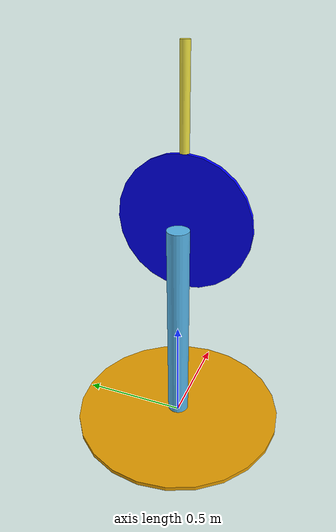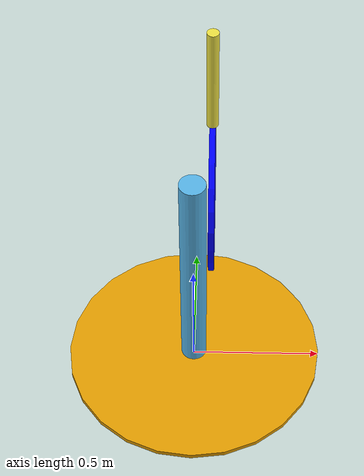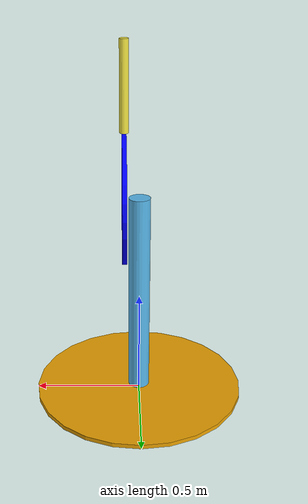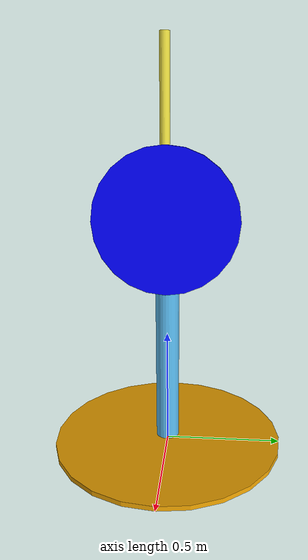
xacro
<?xml version="1.0"?>
<robot xmlns:xacro="http://www.ros.org/wiki/xacro" name="buff">

    <!-- 宏定义 -->
    <xacro:macro name="cylinder_inertial_matrix" params="m r h">
        <inertial>
            <mass value="${m}"/>
            <inertia ixx="${m*(3*r*r+h*h)/12}" ixy="0" ixz="0"
                     iyy="${m*(3*r*r+h*h)/12}" iyz="0"
                     izz="${m*r*r/2}"/>
        </inertial>
    </xacro:macro>
    <xacro:property name="base_radius" value="0.5"/>
    <xacro:property name="base_height" value="0.02"/>
    <xacro:property name="base_mass" value="100"/>

    <!-- 底座-->
    <link name="base_link">
        <visual>
            <geometry>
                <cylinder radius="${base_radius}" length="${base_height}"/>
            </geometry>
            <origin xyz="0 0 ${base_height/2}" rpy="0 0 0"/>
        </visual>
        <collision>
            <geometry>
                <cylinder radius="${base_radius}" length="${base_height}"/>
            </geometry>
            <origin xyz="0 0 ${base_height/2}" rpy="0 0 0"/>
        </collision>
        <xacro:cylinder_inertial_matrix m="${base_mass}" r="${base_radius}" h="${base_height}"/>
    </link>

    <!--立柱-->
    <xacro:property name="pillar_radius" value="0.05"/>
    <xacro:property name="pillar_length" value="1.0"/>
    <xacro:property name="pillar_m" value="2"/>
    <link name="pillar">
        <visual>
            <geometry>
                <cylinder radius="${pillar_radius}" length="${pillar_length}"/>
            </geometry>
            <origin xyz="0 0 0" rpy="0 0 0"/>
        </visual>
        <collision>
            <geometry>
                <cylinder radius="${pillar_radius}" length="${pillar_length}"/>
            </geometry>
            <origin xyz="0 0 0" rpy="0 0 0"/>
        </collision>
        <xacro:cylinder_inertial_matrix m="${pillar_m}" r="${pillar_radius}" h="${pillar_length}"/>
    </link>
    <!-- 关节 -->
    <joint name="base_to_pillar" type="fixed">
        <parent link="base_link"/>
        <child link="pillar"/>
        <origin xyz="0 0 ${pillar_length/2}" rpy="0 0 0"/>
    </joint>

    <!-- 圆盘参数定义 -->
    <xacro:property name="disk_radius" value="0.3"/>
    <xacro:property name="disk_height" value="0.02"/>
    <xacro:property name="disk_mass" value="0.5"/>
    <!-- 圆盘link -->
    <link name="disk">
        <visual>
            <geometry>
                <cylinder radius="${disk_radius}" length="${disk_height}"/>
            </geometry>
            <origin xyz="0 0 0" rpy="0 ${pi/2} 0"/>
            <material name="blue">
                <color rgba="0 0 1 1"/>
            </material>
        </visual>
        <collision>
            <geometry>
                <cylinder radius="${disk_radius}" length="${disk_height}"/>
            </geometry>
            <origin xyz="0 0 0" rpy="0 ${pi/2} 0"/>
        </collision>
        <xacro:cylinder_inertial_matrix m="${disk_mass}" r="${disk_radius}" h="${disk_height}"/>
    </link>

    <!-- 立柱到圆盘的关节 -->
    <joint name="rotating_joint" type="continuous">
        <parent link="pillar"/>
        <child link="disk"/>
        <origin xyz="0.07 0 0.5" rpy="0 0 0"/>
        <axis xyz="1 0 0"/>
    </joint>

    <!-- 摆杆 -->
    <!-- 宏定义 -->
    <xacro:property name="arm_radius" value="0.02"/>
    <xacro:property name="arm_length" value="0.4"/>
    <xacro:property name="arm_m" value="0.5"/>
    <link name="buff_arm">
        <visual>
            <geometry>
                <cylinder radius="${arm_radius}" length="${arm_length}"/>
            </geometry>
            <origin xyz="0 0 0" rpy="0 0 0"/>
        </visual>
        <collision>
            <geometry>
                <cylinder radius="${arm_radius}" length="${arm_length}"/>
            </geometry>
            <origin xyz="0 0 0" rpy="0 0 0"/>
        </collision>
        <!-- 圆柱体的惯性矩阵 -->
        <xacro:cylinder_inertial_matrix m="${arm_m}" r="${arm_radius}" h="${arm_length}"/>
    </link>
    <gazebo reference="disk">
        <gravity>false</gravity>
    </gazebo>
    <gazebo reference="buff_arm">
        <gravity>false</gravity>
    </gazebo>

    <!-- 关节 -->
    <joint name="disk2arm" type="fixed">
        <parent link="disk"/>
        <child link="buff_arm"/>
        <origin xyz="0 0 0.5" rpy="0 0 0"/>
    </joint>
    <!-- 传动装置 -->
    <transmission name="rotating_trans">
        <type>transmission_interface/SimpleTransmission</type>
        <joint name="rotating_joint">
            <hardwareInterface>hardware_interface/EffortJointInterface</hardwareInterface>
        </joint>
        <actuator name="rotating_motor">
            <hardwareInterface>hardware_interface/EffortJointInterface</hardwareInterface>
            <mechanicalReduction>1</mechanicalReduction>
        </actuator>
    </transmission>

    <!-- gazebo硬件支持 -->
    <gazebo>
        <plugin name="gazebo_ros_control" filename="libgazebo_ros_control.so">
            <robotNamespace>/</robotNamespace>
        </plugin>
    </gazebo>
</robot>
